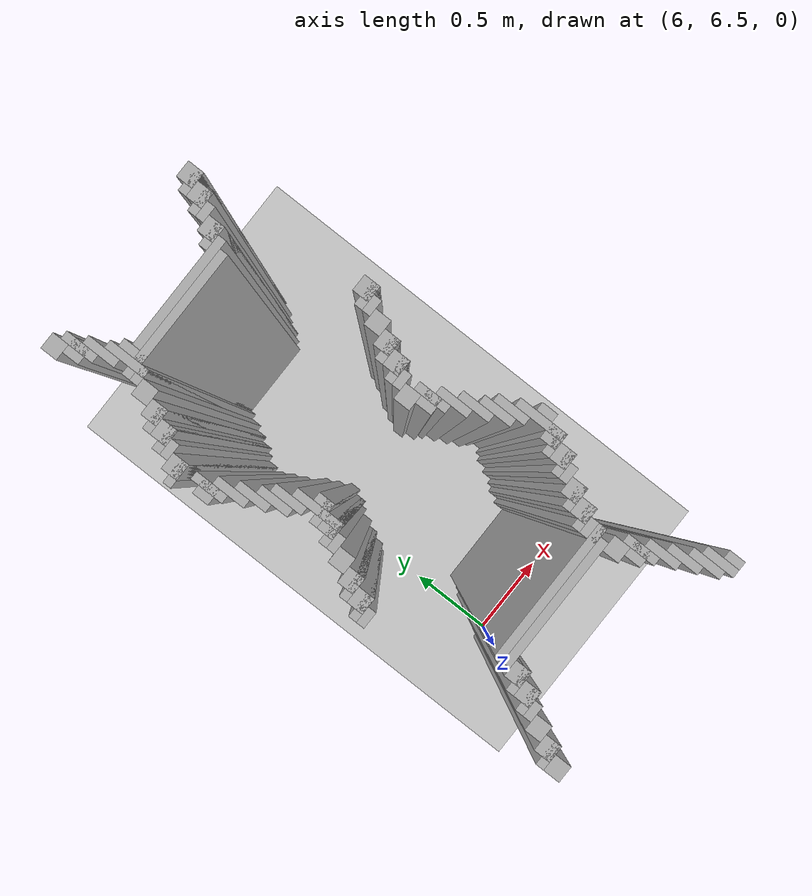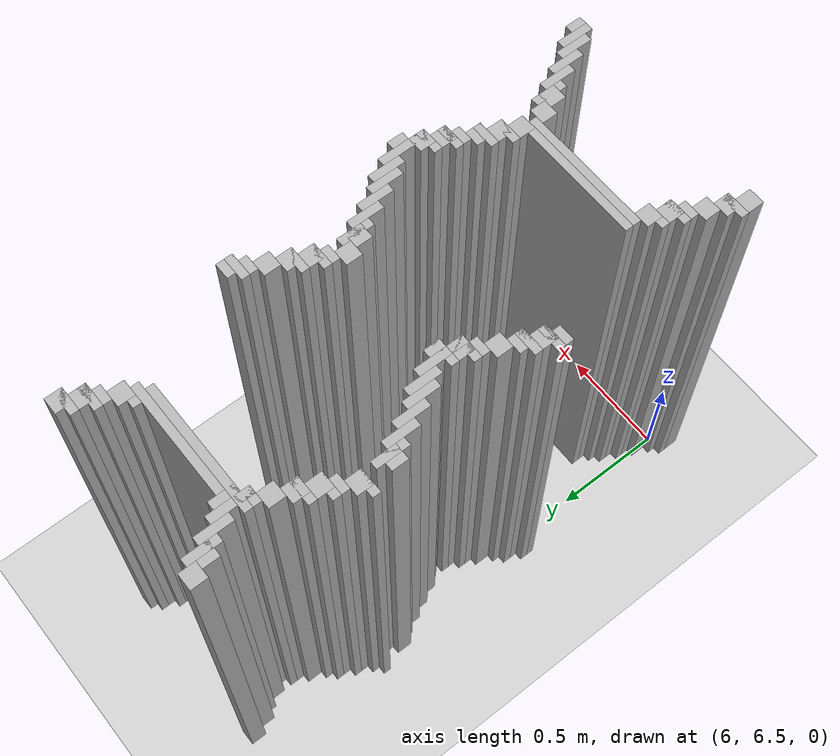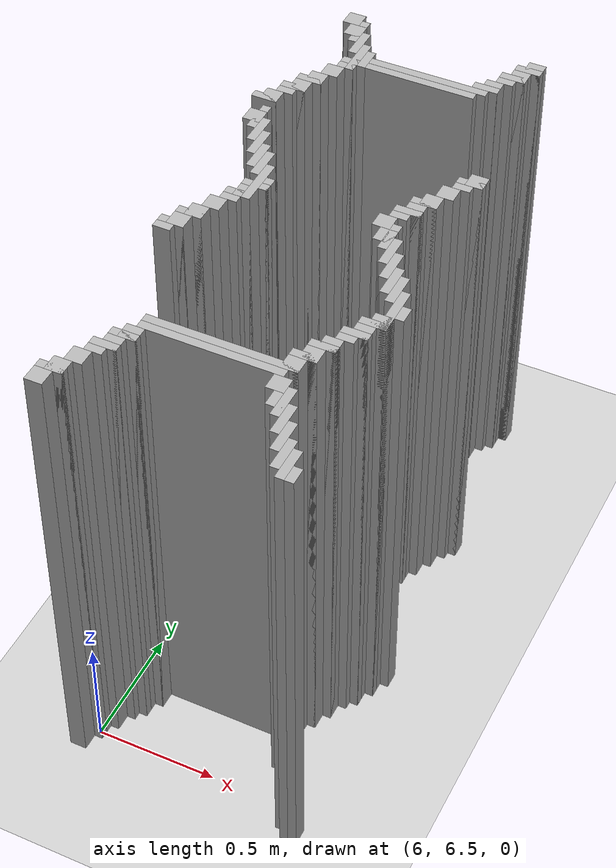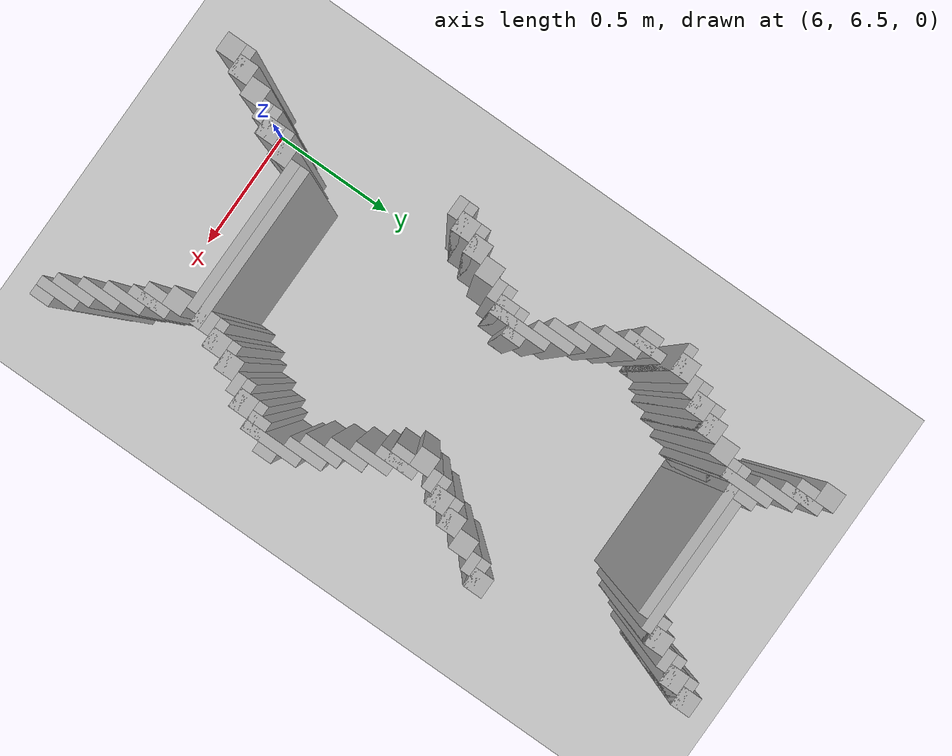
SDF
<sdf version="1.6">
 <world name="slam_world">
  <model name="ground_plane">
   <static>true</static>
   <link name="link">
    <collision name="collision">
     <geometry><plane><normal>0 0 1</normal><size>100 100</size></plane></geometry>
    </collision>
    <visual name="visual">
     <geometry><plane><normal>0 0 1</normal><size>100 100</size></plane></geometry>
     <material>
      <ambient>0.8 0.8 0.8 1</ambient>
      <diffuse>0.8 0.8 0.8 1</diffuse>
      <specular>0.8 0.8 0.8 1</specular>
     </material>
    </visual>
   </link>
  </model>
  <model name="wall_2879">
   <static>true</static>
   <pose>6.020881670533642 8.735498839907192 1.0 0 0 0</pose>
   <link name="link">
    <collision name="collision">
     <geometry><box><size>0.06960556844547564 0.06960556844547564 2.0</size></box></geometry>
    </collision>
    <visual name="visual">
     <geometry><box><size>0.06960556844547564 0.06960556844547564 2.0</size></box></geometry>
     <material><ambient>0.5 0.5 0.5 1</ambient><diffuse>0.7 0.7 0.7 1</diffuse></material>
    </visual>
   </link>
  </model>
  <model name="wall_2880">
   <static>true</static>
   <pose>6.786542923433874 8.735498839907192 1.0 0 0 0</pose>
   <link name="link">
    <collision name="collision">
     <geometry><box><size>0.06960556844547564 0.06960556844547564 2.0</size></box></geometry>
    </collision>
    <visual name="visual">
     <geometry><box><size>0.06960556844547564 0.06960556844547564 2.0</size></box></geometry>
     <material><ambient>0.5 0.5 0.5 1</ambient><diffuse>0.7 0.7 0.7 1</diffuse></material>
    </visual>
   </link>
  </model>
  <model name="wall_2894">
   <static>true</static>
   <pose>6.073085846867749 8.665893271461716 1.0 0 0 0</pose>
   <link name="link">
    <collision name="collision">
     <geometry><box><size>0.03480278422273782 0.13921113689095127 2.0</size></box></geometry>
    </collision>
    <visual name="visual">
     <geometry><box><size>0.03480278422273782 0.13921113689095127 2.0</size></box></geometry>
     <material><ambient>0.5 0.5 0.5 1</ambient><diffuse>0.7 0.7 0.7 1</diffuse></material>
    </visual>
   </link>
  </model>
  <model name="wall_2895">
   <static>true</static>
   <pose>6.769141531322505 8.718097447795824 1.0 0 0 0</pose>
   <link name="link">
    <collision name="collision">
     <geometry><box><size>0.10440835266821345 0.03480278422273782 2.0</size></box></geometry>
    </collision>
    <visual name="visual">
     <geometry><box><size>0.10440835266821345 0.03480278422273782 2.0</size></box></geometry>
     <material><ambient>0.5 0.5 0.5 1</ambient><diffuse>0.7 0.7 0.7 1</diffuse></material>
    </visual>
   </link>
  </model>
  <model name="wall_2908">
   <static>true</static>
   <pose>6.05568445475638 8.665893271461716 1.0 0 0 0</pose>
   <link name="link">
    <collision name="collision">
     <geometry><box><size>0.06960556844547564 0.06960556844547564 2.0</size></box></geometry>
    </collision>
    <visual name="visual">
     <geometry><box><size>0.06960556844547564 0.06960556844547564 2.0</size></box></geometry>
     <material><ambient>0.5 0.5 0.5 1</ambient><diffuse>0.7 0.7 0.7 1</diffuse></material>
    </visual>
   </link>
  </model>
  <model name="wall_2909">
   <static>true</static>
   <pose>6.751740139211137 8.665893271461716 1.0 0 0 0</pose>
   <link name="link">
    <collision name="collision">
     <geometry><box><size>0.06960556844547564 0.06960556844547564 2.0</size></box></geometry>
    </collision>
    <visual name="visual">
     <geometry><box><size>0.06960556844547564 0.06960556844547564 2.0</size></box></geometry>
     <material><ambient>0.5 0.5 0.5 1</ambient><diffuse>0.7 0.7 0.7 1</diffuse></material>
    </visual>
   </link>
  </model>
  <model name="wall_2920">
   <static>true</static>
   <pose>6.107888631090487 8.596287703016241 1.0 0 0 0</pose>
   <link name="link">
    <collision name="collision">
     <geometry><box><size>0.03480278422273782 0.13921113689095127 2.0</size></box></geometry>
    </collision>
    <visual name="visual">
     <geometry><box><size>0.03480278422273782 0.13921113689095127 2.0</size></box></geometry>
     <material><ambient>0.5 0.5 0.5 1</ambient><diffuse>0.7 0.7 0.7 1</diffuse></material>
    </visual>
   </link>
  </model>
  <model name="wall_2921">
   <static>true</static>
   <pose>6.734338747099768 8.648491879350347 1.0 0 0 0</pose>
   <link name="link">
    <collision name="collision">
     <geometry><box><size>0.10440835266821345 0.03480278422273782 2.0</size></box></geometry>
    </collision>
    <visual name="visual">
     <geometry><box><size>0.10440835266821345 0.03480278422273782 2.0</size></box></geometry>
     <material><ambient>0.5 0.5 0.5 1</ambient><diffuse>0.7 0.7 0.7 1</diffuse></material>
    </visual>
   </link>
  </model>
  <model name="wall_2931">
   <static>true</static>
   <pose>6.716937354988398 8.61368909512761 1.0 0 0 0</pose>
   <link name="link">
    <collision name="collision">
     <geometry><box><size>0.06960556844547564 0.03480278422273782 2.0</size></box></geometry>
    </collision>
    <visual name="visual">
     <geometry><box><size>0.06960556844547564 0.03480278422273782 2.0</size></box></geometry>
     <material><ambient>0.5 0.5 0.5 1</ambient><diffuse>0.7 0.7 0.7 1</diffuse></material>
    </visual>
   </link>
  </model>
  <model name="wall_2941">
   <static>true</static>
   <pose>6.142691415313225 8.509280742459396 1.0 0 0 0</pose>
   <link name="link">
    <collision name="collision">
     <geometry><box><size>0.03480278422273782 0.17401392111368907 2.0</size></box></geometry>
    </collision>
    <visual name="visual">
     <geometry><box><size>0.03480278422273782 0.17401392111368907 2.0</size></box></geometry>
     <material><ambient>0.5 0.5 0.5 1</ambient><diffuse>0.7 0.7 0.7 1</diffuse></material>
    </visual>
   </link>
  </model>
  <model name="wall_2942">
   <static>true</static>
   <pose>6.682134570765661 8.561484918793504 1.0 0 0 0</pose>
   <link name="link">
    <collision name="collision">
     <geometry><box><size>0.06960556844547564 0.06960556844547564 2.0</size></box></geometry>
    </collision>
    <visual name="visual">
     <geometry><box><size>0.06960556844547564 0.06960556844547564 2.0</size></box></geometry>
     <material><ambient>0.5 0.5 0.5 1</ambient><diffuse>0.7 0.7 0.7 1</diffuse></material>
    </visual>
   </link>
  </model>
  <model name="wall_2956">
   <static>true</static>
   <pose>6.177494199535962 8.509280742459396 1.0 0 0 0</pose>
   <link name="link">
    <collision name="collision">
     <geometry><box><size>0.03480278422273782 0.10440835266821345 2.0</size></box></geometry>
    </collision>
    <visual name="visual">
     <geometry><box><size>0.03480278422273782 0.10440835266821345 2.0</size></box></geometry>
     <material><ambient>0.5 0.5 0.5 1</ambient><diffuse>0.7 0.7 0.7 1</diffuse></material>
    </visual>
   </link>
  </model>
  <model name="wall_2957">
   <static>true</static>
   <pose>6.664733178654292 8.544083526682135 1.0 0 0 0</pose>
   <link name="link">
    <collision name="collision">
     <geometry><box><size>0.10440835266821345 0.03480278422273782 2.0</size></box></geometry>
    </collision>
    <visual name="visual">
     <geometry><box><size>0.10440835266821345 0.03480278422273782 2.0</size></box></geometry>
     <material><ambient>0.5 0.5 0.5 1</ambient><diffuse>0.7 0.7 0.7 1</diffuse></material>
    </visual>
   </link>
  </model>
  <model name="wall_2969">
   <static>true</static>
   <pose>6.438515081206496 8.509280742459396 1.0 0 0 0</pose>
   <link name="link">
    <collision name="collision">
     <geometry><box><size>0.4872389791183295 0.03480278422273782 2.0</size></box></geometry>
    </collision>
    <visual name="visual">
     <geometry><box><size>0.4872389791183295 0.03480278422273782 2.0</size></box></geometry>
     <material><ambient>0.5 0.5 0.5 1</ambient><diffuse>0.7 0.7 0.7 1</diffuse></material>
    </visual>
   </link>
  </model>
  <model name="wall_2979">
   <static>true</static>
   <pose>6.368909512761021 8.474477958236658 1.0 0 0 0</pose>
   <link name="link">
    <collision name="collision">
     <geometry><box><size>0.5568445475638051 0.03480278422273782 2.0</size></box></geometry>
    </collision>
    <visual name="visual">
     <geometry><box><size>0.5568445475638051 0.03480278422273782 2.0</size></box></geometry>
     <material><ambient>0.5 0.5 0.5 1</ambient><diffuse>0.7 0.7 0.7 1</diffuse></material>
    </visual>
   </link>
  </model>
  <model name="wall_2990">
   <static>true</static>
   <pose>6.125290023201856 8.43967517401392 1.0 0 0 0</pose>
   <link name="link">
    <collision name="collision">
     <geometry><box><size>0.06960556844547564 0.03480278422273782 2.0</size></box></geometry>
    </collision>
    <visual name="visual">
     <geometry><box><size>0.06960556844547564 0.03480278422273782 2.0</size></box></geometry>
     <material><ambient>0.5 0.5 0.5 1</ambient><diffuse>0.7 0.7 0.7 1</diffuse></material>
    </visual>
   </link>
  </model>
  <model name="wall_3003">
   <static>true</static>
   <pose>6.090487238979118 8.387470997679815 1.0 0 0 0</pose>
   <link name="link">
    <collision name="collision">
     <geometry><box><size>0.06960556844547564 0.06960556844547564 2.0</size></box></geometry>
    </collision>
    <visual name="visual">
     <geometry><box><size>0.06960556844547564 0.06960556844547564 2.0</size></box></geometry>
     <material><ambient>0.5 0.5 0.5 1</ambient><diffuse>0.7 0.7 0.7 1</diffuse></material>
    </visual>
   </link>
  </model>
  <model name="wall_3016">
   <static>true</static>
   <pose>6.05568445475638 8.317865429234338 1.0 0 0 0</pose>
   <link name="link">
    <collision name="collision">
     <geometry><box><size>0.06960556844547564 0.06960556844547564 2.0</size></box></geometry>
    </collision>
    <visual name="visual">
     <geometry><box><size>0.06960556844547564 0.06960556844547564 2.0</size></box></geometry>
     <material><ambient>0.5 0.5 0.5 1</ambient><diffuse>0.7 0.7 0.7 1</diffuse></material>
    </visual>
   </link>
  </model>
  <model name="wall_3029">
   <static>true</static>
   <pose>6.038283062645012 8.30046403712297 1.0 0 0 0</pose>
   <link name="link">
    <collision name="collision">
     <geometry><box><size>0.10440835266821345 0.03480278422273782 2.0</size></box></geometry>
    </collision>
    <visual name="visual">
     <geometry><box><size>0.10440835266821345 0.03480278422273782 2.0</size></box></geometry>
     <material><ambient>0.5 0.5 0.5 1</ambient><diffuse>0.7 0.7 0.7 1</diffuse></material>
    </visual>
   </link>
  </model>
  <model name="wall_3041">
   <static>true</static>
   <pose>6.020881670533642 8.248259860788863 1.0 0 0 0</pose>
   <link name="link">
    <collision name="collision">
     <geometry><box><size>0.06960556844547564 0.06960556844547564 2.0</size></box></geometry>
    </collision>
    <visual name="visual">
     <geometry><box><size>0.06960556844547564 0.06960556844547564 2.0</size></box></geometry>
     <material><ambient>0.5 0.5 0.5 1</ambient><diffuse>0.7 0.7 0.7 1</diffuse></material>
    </visual>
   </link>
  </model>
  <model name="wall_3053">
   <static>true</static>
   <pose>6.003480278422273 8.230858468677495 1.0 0 0 0</pose>
   <link name="link">
    <collision name="collision">
     <geometry><box><size>0.10440835266821345 0.03480278422273782 2.0</size></box></geometry>
    </collision>
    <visual name="visual">
     <geometry><box><size>0.10440835266821345 0.03480278422273782 2.0</size></box></geometry>
     <material><ambient>0.5 0.5 0.5 1</ambient><diffuse>0.7 0.7 0.7 1</diffuse></material>
    </visual>
   </link>
  </model>
  <model name="wall_3065">
   <static>true</static>
   <pose>5.986078886310905 8.196055684454755 1.0 0 0 0</pose>
   <link name="link">
    <collision name="collision">
     <geometry><box><size>0.06960556844547564 0.03480278422273782 2.0</size></box></geometry>
    </collision>
    <visual name="visual">
     <geometry><box><size>0.06960556844547564 0.03480278422273782 2.0</size></box></geometry>
     <material><ambient>0.5 0.5 0.5 1</ambient><diffuse>0.7 0.7 0.7 1</diffuse></material>
    </visual>
   </link>
  </model>
  <model name="wall_3075">
   <static>true</static>
   <pose>5.951276102088166 8.14385150812065 1.0 0 0 0</pose>
   <link name="link">
    <collision name="collision">
     <geometry><box><size>0.06960556844547564 0.06960556844547564 2.0</size></box></geometry>
    </collision>
    <visual name="visual">
     <geometry><box><size>0.06960556844547564 0.06960556844547564 2.0</size></box></geometry>
     <material><ambient>0.5 0.5 0.5 1</ambient><diffuse>0.7 0.7 0.7 1</diffuse></material>
    </visual>
   </link>
  </model>
  <model name="wall_3087">
   <static>true</static>
   <pose>5.933874709976798 8.12645011600928 1.0 0 0 0</pose>
   <link name="link">
    <collision name="collision">
     <geometry><box><size>0.10440835266821345 0.03480278422273782 2.0</size></box></geometry>
    </collision>
    <visual name="visual">
     <geometry><box><size>0.10440835266821345 0.03480278422273782 2.0</size></box></geometry>
     <material><ambient>0.5 0.5 0.5 1</ambient><diffuse>0.7 0.7 0.7 1</diffuse></material>
    </visual>
   </link>
  </model>
  <model name="wall_3109">
   <static>true</static>
   <pose>5.968677494199536 8.004640371229698 1.0 0 0 0</pose>
   <link name="link">
    <collision name="collision">
     <geometry><box><size>0.03480278422273782 0.13921113689095127 2.0</size></box></geometry>
    </collision>
    <visual name="visual">
     <geometry><box><size>0.03480278422273782 0.13921113689095127 2.0</size></box></geometry>
     <material><ambient>0.5 0.5 0.5 1</ambient><diffuse>0.7 0.7 0.7 1</diffuse></material>
    </visual>
   </link>
  </model>
  <model name="wall_3116">
   <static>true</static>
   <pose>5.951276102088166 8.004640371229698 1.0 0 0 0</pose>
   <link name="link">
    <collision name="collision">
     <geometry><box><size>0.06960556844547564 0.06960556844547564 2.0</size></box></geometry>
    </collision>
    <visual name="visual">
     <geometry><box><size>0.06960556844547564 0.06960556844547564 2.0</size></box></geometry>
     <material><ambient>0.5 0.5 0.5 1</ambient><diffuse>0.7 0.7 0.7 1</diffuse></material>
    </visual>
   </link>
  </model>
  <model name="wall_3117">
   <static>true</static>
   <pose>6.85614849187935 8.004640371229698 1.0 0 0 0</pose>
   <link name="link">
    <collision name="collision">
     <geometry><box><size>0.06960556844547564 0.06960556844547564 2.0</size></box></geometry>
    </collision>
    <visual name="visual">
     <geometry><box><size>0.06960556844547564 0.06960556844547564 2.0</size></box></geometry>
     <material><ambient>0.5 0.5 0.5 1</ambient><diffuse>0.7 0.7 0.7 1</diffuse></material>
    </visual>
   </link>
  </model>
  <model name="wall_3125">
   <static>true</static>
   <pose>6.003480278422273 7.935034802784222 1.0 0 0 0</pose>
   <link name="link">
    <collision name="collision">
     <geometry><box><size>0.03480278422273782 0.13921113689095127 2.0</size></box></geometry>
    </collision>
    <visual name="visual">
     <geometry><box><size>0.03480278422273782 0.13921113689095127 2.0</size></box></geometry>
     <material><ambient>0.5 0.5 0.5 1</ambient><diffuse>0.7 0.7 0.7 1</diffuse></material>
    </visual>
   </link>
  </model>
  <model name="wall_3126">
   <static>true</static>
   <pose>6.838747099767981 7.987238979118329 1.0 0 0 0</pose>
   <link name="link">
    <collision name="collision">
     <geometry><box><size>0.10440835266821345 0.03480278422273782 2.0</size></box></geometry>
    </collision>
    <visual name="visual">
     <geometry><box><size>0.10440835266821345 0.03480278422273782 2.0</size></box></geometry>
     <material><ambient>0.5 0.5 0.5 1</ambient><diffuse>0.7 0.7 0.7 1</diffuse></material>
    </visual>
   </link>
  </model>
  <model name="wall_3133">
   <static>true</static>
   <pose>6.821345707656612 7.952436194895592 1.0 0 0 0</pose>
   <link name="link">
    <collision name="collision">
     <geometry><box><size>0.06960556844547564 0.03480278422273782 2.0</size></box></geometry>
    </collision>
    <visual name="visual">
     <geometry><box><size>0.06960556844547564 0.03480278422273782 2.0</size></box></geometry>
     <material><ambient>0.5 0.5 0.5 1</ambient><diffuse>0.7 0.7 0.7 1</diffuse></material>
    </visual>
   </link>
  </model>
  <model name="wall_3139">
   <static>true</static>
   <pose>6.038283062645012 7.865429234338746 1.0 0 0 0</pose>
   <link name="link">
    <collision name="collision">
     <geometry><box><size>0.03480278422273782 0.13921113689095127 2.0</size></box></geometry>
    </collision>
    <visual name="visual">
     <geometry><box><size>0.03480278422273782 0.13921113689095127 2.0</size></box></geometry>
     <material><ambient>0.5 0.5 0.5 1</ambient><diffuse>0.7 0.7 0.7 1</diffuse></material>
    </visual>
   </link>
  </model>
  <model name="wall_3140">
   <static>true</static>
   <pose>6.786542923433874 7.900232018561485 1.0 0 0 0</pose>
   <link name="link">
    <collision name="collision">
     <geometry><box><size>0.06960556844547564 0.06960556844547564 2.0</size></box></geometry>
    </collision>
    <visual name="visual">
     <geometry><box><size>0.06960556844547564 0.06960556844547564 2.0</size></box></geometry>
     <material><ambient>0.5 0.5 0.5 1</ambient><diffuse>0.7 0.7 0.7 1</diffuse></material>
    </visual>
   </link>
  </model>
  <model name="wall_3148">
   <static>true</static>
   <pose>6.073085846867749 7.795823665893272 1.0 0 0 0</pose>
   <link name="link">
    <collision name="collision">
     <geometry><box><size>0.03480278422273782 0.13921113689095127 2.0</size></box></geometry>
    </collision>
    <visual name="visual">
     <geometry><box><size>0.03480278422273782 0.13921113689095127 2.0</size></box></geometry>
     <material><ambient>0.5 0.5 0.5 1</ambient><diffuse>0.7 0.7 0.7 1</diffuse></material>
    </visual>
   </link>
  </model>
  <model name="wall_3149">
   <static>true</static>
   <pose>6.751740139211137 7.830626450116009 1.0 0 0 0</pose>
   <link name="link">
    <collision name="collision">
     <geometry><box><size>0.06960556844547564 0.06960556844547564 2.0</size></box></geometry>
    </collision>
    <visual name="visual">
     <geometry><box><size>0.06960556844547564 0.06960556844547564 2.0</size></box></geometry>
     <material><ambient>0.5 0.5 0.5 1</ambient><diffuse>0.7 0.7 0.7 1</diffuse></material>
    </visual>
   </link>
  </model>
  <model name="wall_3157">
   <static>true</static>
   <pose>6.107888631090487 7.761020881670533 1.0 0 0 0</pose>
   <link name="link">
    <collision name="collision">
     <geometry><box><size>0.03480278422273782 0.13921113689095127 2.0</size></box></geometry>
    </collision>
    <visual name="visual">
     <geometry><box><size>0.03480278422273782 0.13921113689095127 2.0</size></box></geometry>
     <material><ambient>0.5 0.5 0.5 1</ambient><diffuse>0.7 0.7 0.7 1</diffuse></material>
    </visual>
   </link>
  </model>
  <model name="wall_3158">
   <static>true</static>
   <pose>6.734338747099768 7.81322505800464 1.0 0 0 0</pose>
   <link name="link">
    <collision name="collision">
     <geometry><box><size>0.10440835266821345 0.03480278422273782 2.0</size></box></geometry>
    </collision>
    <visual name="visual">
     <geometry><box><size>0.10440835266821345 0.03480278422273782 2.0</size></box></geometry>
     <material><ambient>0.5 0.5 0.5 1</ambient><diffuse>0.7 0.7 0.7 1</diffuse></material>
    </visual>
   </link>
  </model>
  <model name="wall_3165">
   <static>true</static>
   <pose>6.716937354988398 7.761020881670533 1.0 0 0 0</pose>
   <link name="link">
    <collision name="collision">
     <geometry><box><size>0.06960556844547564 0.06960556844547564 2.0</size></box></geometry>
    </collision>
    <visual name="visual">
     <geometry><box><size>0.06960556844547564 0.06960556844547564 2.0</size></box></geometry>
     <material><ambient>0.5 0.5 0.5 1</ambient><diffuse>0.7 0.7 0.7 1</diffuse></material>
    </visual>
   </link>
  </model>
  <model name="wall_3169">
   <static>true</static>
   <pose>6.142691415313225 7.65661252900232 1.0 0 0 0</pose>
   <link name="link">
    <collision name="collision">
     <geometry><box><size>0.03480278422273782 0.2088167053364269 2.0</size></box></geometry>
    </collision>
    <visual name="visual">
     <geometry><box><size>0.03480278422273782 0.2088167053364269 2.0</size></box></geometry>
     <material><ambient>0.5 0.5 0.5 1</ambient><diffuse>0.7 0.7 0.7 1</diffuse></material>
    </visual>
   </link>
  </model>
  <model name="wall_3170">
   <static>true</static>
   <pose>6.69953596287703 7.743619489559165 1.0 0 0 0</pose>
   <link name="link">
    <collision name="collision">
     <geometry><box><size>0.10440835266821345 0.03480278422273782 2.0</size></box></geometry>
    </collision>
    <visual name="visual">
     <geometry><box><size>0.10440835266821345 0.03480278422273782 2.0</size></box></geometry>
     <material><ambient>0.5 0.5 0.5 1</ambient><diffuse>0.7 0.7 0.7 1</diffuse></material>
    </visual>
   </link>
  </model>
  <model name="wall_3177">
   <static>true</static>
   <pose>6.682134570765661 7.708816705336426 1.0 0 0 0</pose>
   <link name="link">
    <collision name="collision">
     <geometry><box><size>0.06960556844547564 0.03480278422273782 2.0</size></box></geometry>
    </collision>
    <visual name="visual">
     <geometry><box><size>0.06960556844547564 0.03480278422273782 2.0</size></box></geometry>
     <material><ambient>0.5 0.5 0.5 1</ambient><diffuse>0.7 0.7 0.7 1</diffuse></material>
    </visual>
   </link>
  </model>
  <model name="wall_3183">
   <static>true</static>
   <pose>6.177494199535962 7.65661252900232 1.0 0 0 0</pose>
   <link name="link">
    <collision name="collision">
     <geometry><box><size>0.03480278422273782 0.06960556844547564 2.0</size></box></geometry>
    </collision>
    <visual name="visual">
     <geometry><box><size>0.03480278422273782 0.06960556844547564 2.0</size></box></geometry>
     <material><ambient>0.5 0.5 0.5 1</ambient><diffuse>0.7 0.7 0.7 1</diffuse></material>
    </visual>
   </link>
  </model>
  <model name="wall_3184">
   <static>true</static>
   <pose>6.647331786542924 7.65661252900232 1.0 0 0 0</pose>
   <link name="link">
    <collision name="collision">
     <geometry><box><size>0.06960556844547564 0.06960556844547564 2.0</size></box></geometry>
    </collision>
    <visual name="visual">
     <geometry><box><size>0.06960556844547564 0.06960556844547564 2.0</size></box></geometry>
     <material><ambient>0.5 0.5 0.5 1</ambient><diffuse>0.7 0.7 0.7 1</diffuse></material>
    </visual>
   </link>
  </model>
  <model name="wall_3197">
   <static>true</static>
   <pose>6.142691415313225 7.6392111368909505 1.0 0 0 0</pose>
   <link name="link">
    <collision name="collision">
     <geometry><box><size>0.10440835266821345 0.03480278422273782 2.0</size></box></geometry>
    </collision>
    <visual name="visual">
     <geometry><box><size>0.10440835266821345 0.03480278422273782 2.0</size></box></geometry>
     <material><ambient>0.5 0.5 0.5 1</ambient><diffuse>0.7 0.7 0.7 1</diffuse></material>
    </visual>
   </link>
  </model>
  <model name="wall_3198">
   <static>true</static>
   <pose>6.69953596287703 7.587006960556844 1.0 0 0 0</pose>
   <link name="link">
    <collision name="collision">
     <geometry><box><size>0.03480278422273782 0.13921113689095127 2.0</size></box></geometry>
    </collision>
    <visual name="visual">
     <geometry><box><size>0.03480278422273782 0.13921113689095127 2.0</size></box></geometry>
     <material><ambient>0.5 0.5 0.5 1</ambient><diffuse>0.7 0.7 0.7 1</diffuse></material>
    </visual>
   </link>
  </model>
  <model name="wall_3210">
   <static>true</static>
   <pose>6.125290023201856 7.587006960556844 1.0 0 0 0</pose>
   <link name="link">
    <collision name="collision">
     <geometry><box><size>0.06960556844547564 0.06960556844547564 2.0</size></box></geometry>
    </collision>
    <visual name="visual">
     <geometry><box><size>0.06960556844547564 0.06960556844547564 2.0</size></box></geometry>
     <material><ambient>0.5 0.5 0.5 1</ambient><diffuse>0.7 0.7 0.7 1</diffuse></material>
    </visual>
   </link>
  </model>
  <model name="wall_3211">
   <static>true</static>
   <pose>6.682134570765661 7.587006960556844 1.0 0 0 0</pose>
   <link name="link">
    <collision name="collision">
     <geometry><box><size>0.06960556844547564 0.06960556844547564 2.0</size></box></geometry>
    </collision>
    <visual name="visual">
     <geometry><box><size>0.06960556844547564 0.06960556844547564 2.0</size></box></geometry>
     <material><ambient>0.5 0.5 0.5 1</ambient><diffuse>0.7 0.7 0.7 1</diffuse></material>
    </visual>
   </link>
  </model>
  <model name="wall_3223">
   <static>true</static>
   <pose>6.107888631090487 7.569605568445476 1.0 0 0 0</pose>
   <link name="link">
    <collision name="collision">
     <geometry><box><size>0.10440835266821345 0.03480278422273782 2.0</size></box></geometry>
    </collision>
    <visual name="visual">
     <geometry><box><size>0.10440835266821345 0.03480278422273782 2.0</size></box></geometry>
     <material><ambient>0.5 0.5 0.5 1</ambient><diffuse>0.7 0.7 0.7 1</diffuse></material>
    </visual>
   </link>
  </model>
  <model name="wall_3224">
   <static>true</static>
   <pose>6.734338747099768 7.517401392111369 1.0 0 0 0</pose>
   <link name="link">
    <collision name="collision">
     <geometry><box><size>0.03480278422273782 0.13921113689095127 2.0</size></box></geometry>
    </collision>
    <visual name="visual">
     <geometry><box><size>0.03480278422273782 0.13921113689095127 2.0</size></box></geometry>
     <material><ambient>0.5 0.5 0.5 1</ambient><diffuse>0.7 0.7 0.7 1</diffuse></material>
    </visual>
   </link>
  </model>
  <model name="wall_3235">
   <static>true</static>
   <pose>6.090487238979118 7.534802784222737 1.0 0 0 0</pose>
   <link name="link">
    <collision name="collision">
     <geometry><box><size>0.06960556844547564 0.03480278422273782 2.0</size></box></geometry>
    </collision>
    <visual name="visual">
     <geometry><box><size>0.06960556844547564 0.03480278422273782 2.0</size></box></geometry>
     <material><ambient>0.5 0.5 0.5 1</ambient><diffuse>0.7 0.7 0.7 1</diffuse></material>
    </visual>
   </link>
  </model>
  <model name="wall_3245">
   <static>true</static>
   <pose>6.05568445475638 7.48259860788863 1.0 0 0 0</pose>
   <link name="link">
    <collision name="collision">
     <geometry><box><size>0.06960556844547564 0.06960556844547564 2.0</size></box></geometry>
    </collision>
    <visual name="visual">
     <geometry><box><size>0.06960556844547564 0.06960556844547564 2.0</size></box></geometry>
     <material><ambient>0.5 0.5 0.5 1</ambient><diffuse>0.7 0.7 0.7 1</diffuse></material>
    </visual>
   </link>
  </model>
  <model name="wall_3246">
   <static>true</static>
   <pose>6.769141531322505 7.447795823665893 1.0 0 0 0</pose>
   <link name="link">
    <collision name="collision">
     <geometry><box><size>0.03480278422273782 0.13921113689095127 2.0</size></box></geometry>
    </collision>
    <visual name="visual">
     <geometry><box><size>0.03480278422273782 0.13921113689095127 2.0</size></box></geometry>
     <material><ambient>0.5 0.5 0.5 1</ambient><diffuse>0.7 0.7 0.7 1</diffuse></material>
    </visual>
   </link>
  </model>
  <model name="wall_3258">
   <static>true</static>
   <pose>6.020881670533642 7.412993039443156 1.0 0 0 0</pose>
   <link name="link">
    <collision name="collision">
     <geometry><box><size>0.06960556844547564 0.06960556844547564 2.0</size></box></geometry>
    </collision>
    <visual name="visual">
     <geometry><box><size>0.06960556844547564 0.06960556844547564 2.0</size></box></geometry>
     <material><ambient>0.5 0.5 0.5 1</ambient><diffuse>0.7 0.7 0.7 1</diffuse></material>
    </visual>
   </link>
  </model>
  <model name="wall_3259">
   <static>true</static>
   <pose>6.803944315545244 7.378190255220417 1.0 0 0 0</pose>
   <link name="link">
    <collision name="collision">
     <geometry><box><size>0.03480278422273782 0.13921113689095127 2.0</size></box></geometry>
    </collision>
    <visual name="visual">
     <geometry><box><size>0.03480278422273782 0.13921113689095127 2.0</size></box></geometry>
     <material><ambient>0.5 0.5 0.5 1</ambient><diffuse>0.7 0.7 0.7 1</diffuse></material>
    </visual>
   </link>
  </model>
  <model name="wall_3271">
   <static>true</static>
   <pose>6.003480278422273 7.395591647331786 1.0 0 0 0</pose>
   <link name="link">
    <collision name="collision">
     <geometry><box><size>0.10440835266821345 0.03480278422273782 2.0</size></box></geometry>
    </collision>
    <visual name="visual">
     <geometry><box><size>0.10440835266821345 0.03480278422273782 2.0</size></box></geometry>
     <material><ambient>0.5 0.5 0.5 1</ambient><diffuse>0.7 0.7 0.7 1</diffuse></material>
    </visual>
   </link>
  </model>
  <model name="wall_3272">
   <static>true</static>
   <pose>6.838747099767981 7.34338747099768 1.0 0 0 0</pose>
   <link name="link">
    <collision name="collision">
     <geometry><box><size>0.03480278422273782 0.13921113689095127 2.0</size></box></geometry>
    </collision>
    <visual name="visual">
     <geometry><box><size>0.03480278422273782 0.13921113689095127 2.0</size></box></geometry>
     <material><ambient>0.5 0.5 0.5 1</ambient><diffuse>0.7 0.7 0.7 1</diffuse></material>
    </visual>
   </link>
  </model>
  <model name="wall_3281">
   <static>true</static>
   <pose>5.986078886310905 7.34338747099768 1.0 0 0 0</pose>
   <link name="link">
    <collision name="collision">
     <geometry><box><size>0.06960556844547564 0.06960556844547564 2.0</size></box></geometry>
    </collision>
    <visual name="visual">
     <geometry><box><size>0.06960556844547564 0.06960556844547564 2.0</size></box></geometry>
     <material><ambient>0.5 0.5 0.5 1</ambient><diffuse>0.7 0.7 0.7 1</diffuse></material>
    </visual>
   </link>
  </model>
  <model name="wall_3291">
   <static>true</static>
   <pose>5.968677494199536 7.32598607888631 1.0 0 0 0</pose>
   <link name="link">
    <collision name="collision">
     <geometry><box><size>0.10440835266821345 0.03480278422273782 2.0</size></box></geometry>
    </collision>
    <visual name="visual">
     <geometry><box><size>0.10440835266821345 0.03480278422273782 2.0</size></box></geometry>
     <material><ambient>0.5 0.5 0.5 1</ambient><diffuse>0.7 0.7 0.7 1</diffuse></material>
    </visual>
   </link>
  </model>
  <model name="wall_3292">
   <static>true</static>
   <pose>6.8735498839907185 7.238979118329466 1.0 0 0 0</pose>
   <link name="link">
    <collision name="collision">
     <geometry><box><size>0.03480278422273782 0.2088167053364269 2.0</size></box></geometry>
    </collision>
    <visual name="visual">
     <geometry><box><size>0.03480278422273782 0.2088167053364269 2.0</size></box></geometry>
     <material><ambient>0.5 0.5 0.5 1</ambient><diffuse>0.7 0.7 0.7 1</diffuse></material>
    </visual>
   </link>
  </model>
  <model name="wall_3301">
   <static>true</static>
   <pose>5.951276102088166 7.291183294663573 1.0 0 0 0</pose>
   <link name="link">
    <collision name="collision">
     <geometry><box><size>0.06960556844547564 0.03480278422273782 2.0</size></box></geometry>
    </collision>
    <visual name="visual">
     <geometry><box><size>0.06960556844547564 0.03480278422273782 2.0</size></box></geometry>
     <material><ambient>0.5 0.5 0.5 1</ambient><diffuse>0.7 0.7 0.7 1</diffuse></material>
    </visual>
   </link>
  </model>
  <model name="wall_3311">
   <static>true</static>
   <pose>6.908352668213457 7.238979118329466 1.0 0 0 0</pose>
   <link name="link">
    <collision name="collision">
     <geometry><box><size>0.03480278422273782 0.06960556844547564 2.0</size></box></geometry>
    </collision>
    <visual name="visual">
     <geometry><box><size>0.03480278422273782 0.06960556844547564 2.0</size></box></geometry>
     <material><ambient>0.5 0.5 0.5 1</ambient><diffuse>0.7 0.7 0.7 1</diffuse></material>
    </visual>
   </link>
  </model>
  <model name="wall_3322">
   <static>true</static>
   <pose>6.85614849187935 7.16937354988399 1.0 0 0 0</pose>
   <link name="link">
    <collision name="collision">
     <geometry><box><size>0.06960556844547564 0.06960556844547564 2.0</size></box></geometry>
    </collision>
    <visual name="visual">
     <geometry><box><size>0.06960556844547564 0.06960556844547564 2.0</size></box></geometry>
     <material><ambient>0.5 0.5 0.5 1</ambient><diffuse>0.7 0.7 0.7 1</diffuse></material>
    </visual>
   </link>
  </model>
  <model name="wall_3334">
   <static>true</static>
   <pose>6.838747099767981 7.151972157772621 1.0 0 0 0</pose>
   <link name="link">
    <collision name="collision">
     <geometry><box><size>0.10440835266821345 0.03480278422273782 2.0</size></box></geometry>
    </collision>
    <visual name="visual">
     <geometry><box><size>0.10440835266821345 0.03480278422273782 2.0</size></box></geometry>
     <material><ambient>0.5 0.5 0.5 1</ambient><diffuse>0.7 0.7 0.7 1</diffuse></material>
    </visual>
   </link>
  </model>
  <model name="wall_3346">
   <static>true</static>
   <pose>6.821345707656612 7.099767981438514 1.0 0 0 0</pose>
   <link name="link">
    <collision name="collision">
     <geometry><box><size>0.06960556844547564 0.06960556844547564 2.0</size></box></geometry>
    </collision>
    <visual name="visual">
     <geometry><box><size>0.06960556844547564 0.06960556844547564 2.0</size></box></geometry>
     <material><ambient>0.5 0.5 0.5 1</ambient><diffuse>0.7 0.7 0.7 1</diffuse></material>
    </visual>
   </link>
  </model>
  <model name="wall_3358">
   <static>true</static>
   <pose>6.803944315545244 7.082366589327146 1.0 0 0 0</pose>
   <link name="link">
    <collision name="collision">
     <geometry><box><size>0.10440835266821345 0.03480278422273782 2.0</size></box></geometry>
    </collision>
    <visual name="visual">
     <geometry><box><size>0.10440835266821345 0.03480278422273782 2.0</size></box></geometry>
     <material><ambient>0.5 0.5 0.5 1</ambient><diffuse>0.7 0.7 0.7 1</diffuse></material>
    </visual>
   </link>
  </model>
  <model name="wall_3367">
   <static>true</static>
   <pose>6.786542923433874 7.047563805104408 1.0 0 0 0</pose>
   <link name="link">
    <collision name="collision">
     <geometry><box><size>0.06960556844547564 0.03480278422273782 2.0</size></box></geometry>
    </collision>
    <visual name="visual">
     <geometry><box><size>0.06960556844547564 0.03480278422273782 2.0</size></box></geometry>
     <material><ambient>0.5 0.5 0.5 1</ambient><diffuse>0.7 0.7 0.7 1</diffuse></material>
    </visual>
   </link>
  </model>
  <model name="wall_3375">
   <static>true</static>
   <pose>6.751740139211137 6.995359628770301 1.0 0 0 0</pose>
   <link name="link">
    <collision name="collision">
     <geometry><box><size>0.06960556844547564 0.06960556844547564 2.0</size></box></geometry>
    </collision>
    <visual name="visual">
     <geometry><box><size>0.06960556844547564 0.06960556844547564 2.0</size></box></geometry>
     <material><ambient>0.5 0.5 0.5 1</ambient><diffuse>0.7 0.7 0.7 1</diffuse></material>
    </visual>
   </link>
  </model>
  <model name="wall_3384">
   <static>true</static>
   <pose>6.734338747099768 6.977958236658933 1.0 0 0 0</pose>
   <link name="link">
    <collision name="collision">
     <geometry><box><size>0.10440835266821345 0.03480278422273782 2.0</size></box></geometry>
    </collision>
    <visual name="visual">
     <geometry><box><size>0.10440835266821345 0.03480278422273782 2.0</size></box></geometry>
     <material><ambient>0.5 0.5 0.5 1</ambient><diffuse>0.7 0.7 0.7 1</diffuse></material>
    </visual>
   </link>
  </model>
  <model name="wall_3392">
   <static>true</static>
   <pose>6.716937354988398 6.9257540603248255 1.0 0 0 0</pose>
   <link name="link">
    <collision name="collision">
     <geometry><box><size>0.06960556844547564 0.06960556844547564 2.0</size></box></geometry>
    </collision>
    <visual name="visual">
     <geometry><box><size>0.06960556844547564 0.06960556844547564 2.0</size></box></geometry>
     <material><ambient>0.5 0.5 0.5 1</ambient><diffuse>0.7 0.7 0.7 1</diffuse></material>
    </visual>
   </link>
  </model>
  <model name="wall_3404">
   <static>true</static>
   <pose>6.69953596287703 6.908352668213457 1.0 0 0 0</pose>
   <link name="link">
    <collision name="collision">
     <geometry><box><size>0.10440835266821345 0.03480278422273782 2.0</size></box></geometry>
    </collision>
    <visual name="visual">
     <geometry><box><size>0.10440835266821345 0.03480278422273782 2.0</size></box></geometry>
     <material><ambient>0.5 0.5 0.5 1</ambient><diffuse>0.7 0.7 0.7 1</diffuse></material>
    </visual>
   </link>
  </model>
  <model name="wall_3413">
   <static>true</static>
   <pose>6.682134570765661 6.85614849187935 1.0 0 0 0</pose>
   <link name="link">
    <collision name="collision">
     <geometry><box><size>0.06960556844547564 0.06960556844547564 2.0</size></box></geometry>
    </collision>
    <visual name="visual">
     <geometry><box><size>0.06960556844547564 0.06960556844547564 2.0</size></box></geometry>
     <material><ambient>0.5 0.5 0.5 1</ambient><diffuse>0.7 0.7 0.7 1</diffuse></material>
    </visual>
   </link>
  </model>
  <model name="wall_3422">
   <static>true</static>
   <pose>6.421113689095128 6.838747099767981 1.0 0 0 0</pose>
   <link name="link">
    <collision name="collision">
     <geometry><box><size>0.5916473317865429 0.03480278422273782 2.0</size></box></geometry>
    </collision>
    <visual name="visual">
     <geometry><box><size>0.5916473317865429 0.03480278422273782 2.0</size></box></geometry>
     <material><ambient>0.5 0.5 0.5 1</ambient><diffuse>0.7 0.7 0.7 1</diffuse></material>
    </visual>
   </link>
  </model>
  <model name="wall_3432">
   <static>true</static>
   <pose>6.403712296983758 6.803944315545244 1.0 0 0 0</pose>
   <link name="link">
    <collision name="collision">
     <geometry><box><size>0.5568445475638051 0.03480278422273782 2.0</size></box></geometry>
    </collision>
    <visual name="visual">
     <geometry><box><size>0.5568445475638051 0.03480278422273782 2.0</size></box></geometry>
     <material><ambient>0.5 0.5 0.5 1</ambient><diffuse>0.7 0.7 0.7 1</diffuse></material>
    </visual>
   </link>
  </model>
  <model name="wall_3444">
   <static>true</static>
   <pose>6.125290023201856 6.751740139211137 1.0 0 0 0</pose>
   <link name="link">
    <collision name="collision">
     <geometry><box><size>0.06960556844547564 0.06960556844547564 2.0</size></box></geometry>
    </collision>
    <visual name="visual">
     <geometry><box><size>0.06960556844547564 0.06960556844547564 2.0</size></box></geometry>
     <material><ambient>0.5 0.5 0.5 1</ambient><diffuse>0.7 0.7 0.7 1</diffuse></material>
    </visual>
   </link>
  </model>
  <model name="wall_3445">
   <static>true</static>
   <pose>6.682134570765661 6.751740139211137 1.0 0 0 0</pose>
   <link name="link">
    <collision name="collision">
     <geometry><box><size>0.06960556844547564 0.06960556844547564 2.0</size></box></geometry>
    </collision>
    <visual name="visual">
     <geometry><box><size>0.06960556844547564 0.06960556844547564 2.0</size></box></geometry>
     <material><ambient>0.5 0.5 0.5 1</ambient><diffuse>0.7 0.7 0.7 1</diffuse></material>
    </visual>
   </link>
  </model>
  <model name="wall_3464">
   <static>true</static>
   <pose>6.107888631090487 6.734338747099768 1.0 0 0 0</pose>
   <link name="link">
    <collision name="collision">
     <geometry><box><size>0.10440835266821345 0.03480278422273782 2.0</size></box></geometry>
    </collision>
    <visual name="visual">
     <geometry><box><size>0.10440835266821345 0.03480278422273782 2.0</size></box></geometry>
     <material><ambient>0.5 0.5 0.5 1</ambient><diffuse>0.7 0.7 0.7 1</diffuse></material>
    </visual>
   </link>
  </model>
  <model name="wall_3465">
   <static>true</static>
   <pose>6.734338747099768 6.682134570765661 1.0 0 0 0</pose>
   <link name="link">
    <collision name="collision">
     <geometry><box><size>0.03480278422273782 0.13921113689095127 2.0</size></box></geometry>
    </collision>
    <visual name="visual">
     <geometry><box><size>0.03480278422273782 0.13921113689095127 2.0</size></box></geometry>
     <material><ambient>0.5 0.5 0.5 1</ambient><diffuse>0.7 0.7 0.7 1</diffuse></material>
    </visual>
   </link>
  </model>
  <model name="wall_3484">
   <static>true</static>
   <pose>6.090487238979118 6.682134570765661 1.0 0 0 0</pose>
   <link name="link">
    <collision name="collision">
     <geometry><box><size>0.06960556844547564 0.06960556844547564 2.0</size></box></geometry>
    </collision>
    <visual name="visual">
     <geometry><box><size>0.06960556844547564 0.06960556844547564 2.0</size></box></geometry>
     <material><ambient>0.5 0.5 0.5 1</ambient><diffuse>0.7 0.7 0.7 1</diffuse></material>
    </visual>
   </link>
  </model>
  <model name="wall_3485">
   <static>true</static>
   <pose>6.716937354988398 6.682134570765661 1.0 0 0 0</pose>
   <link name="link">
    <collision name="collision">
     <geometry><box><size>0.06960556844547564 0.06960556844547564 2.0</size></box></geometry>
    </collision>
    <visual name="visual">
     <geometry><box><size>0.06960556844547564 0.06960556844547564 2.0</size></box></geometry>
     <material><ambient>0.5 0.5 0.5 1</ambient><diffuse>0.7 0.7 0.7 1</diffuse></material>
    </visual>
   </link>
  </model>
  <model name="wall_3504">
   <static>true</static>
   <pose>6.073085846867749 6.664733178654292 1.0 0 0 0</pose>
   <link name="link">
    <collision name="collision">
     <geometry><box><size>0.10440835266821345 0.03480278422273782 2.0</size></box></geometry>
    </collision>
    <visual name="visual">
     <geometry><box><size>0.10440835266821345 0.03480278422273782 2.0</size></box></geometry>
     <material><ambient>0.5 0.5 0.5 1</ambient><diffuse>0.7 0.7 0.7 1</diffuse></material>
    </visual>
   </link>
  </model>
  <model name="wall_3505">
   <static>true</static>
   <pose>6.769141531322505 6.612529002320185 1.0 0 0 0</pose>
   <link name="link">
    <collision name="collision">
     <geometry><box><size>0.03480278422273782 0.13921113689095127 2.0</size></box></geometry>
    </collision>
    <visual name="visual">
     <geometry><box><size>0.03480278422273782 0.13921113689095127 2.0</size></box></geometry>
     <material><ambient>0.5 0.5 0.5 1</ambient><diffuse>0.7 0.7 0.7 1</diffuse></material>
    </visual>
   </link>
  </model>
  <model name="wall_3520">
   <static>true</static>
   <pose>6.05568445475638 6.629930394431554 1.0 0 0 0</pose>
   <link name="link">
    <collision name="collision">
     <geometry><box><size>0.06960556844547564 0.03480278422273782 2.0</size></box></geometry>
    </collision>
    <visual name="visual">
     <geometry><box><size>0.06960556844547564 0.03480278422273782 2.0</size></box></geometry>
     <material><ambient>0.5 0.5 0.5 1</ambient><diffuse>0.7 0.7 0.7 1</diffuse></material>
    </visual>
   </link>
  </model>
  <model name="wall_3534">
   <static>true</static>
   <pose>6.020881670533642 6.577726218097448 1.0 0 0 0</pose>
   <link name="link">
    <collision name="collision">
     <geometry><box><size>0.06960556844547564 0.06960556844547564 2.0</size></box></geometry>
    </collision>
    <visual name="visual">
     <geometry><box><size>0.06960556844547564 0.06960556844547564 2.0</size></box></geometry>
     <material><ambient>0.5 0.5 0.5 1</ambient><diffuse>0.7 0.7 0.7 1</diffuse></material>
    </visual>
   </link>
  </model>
  <model name="wall_3535">
   <static>true</static>
   <pose>6.803944315545244 6.5429234338747095 1.0 0 0 0</pose>
   <link name="link">
    <collision name="collision">
     <geometry><box><size>0.03480278422273782 0.13921113689095127 2.0</size></box></geometry>
    </collision>
    <visual name="visual">
     <geometry><box><size>0.03480278422273782 0.13921113689095127 2.0</size></box></geometry>
     <material><ambient>0.5 0.5 0.5 1</ambient><diffuse>0.7 0.7 0.7 1</diffuse></material>
    </visual>
   </link>
  </model>
  <model name="wall_3554">
   <static>true</static>
   <pose>5.986078886310905 6.508120649651972 1.0 0 0 0</pose>
   <link name="link">
    <collision name="collision">
     <geometry><box><size>0.06960556844547564 0.06960556844547564 2.0</size></box></geometry>
    </collision>
    <visual name="visual">
     <geometry><box><size>0.06960556844547564 0.06960556844547564 2.0</size></box></geometry>
     <material><ambient>0.5 0.5 0.5 1</ambient><diffuse>0.7 0.7 0.7 1</diffuse></material>
    </visual>
   </link>
  </model>
  <model name="wall_3555">
   <static>true</static>
   <pose>6.838747099767981 6.473317865429234 1.0 0 0 0</pose>
   <link name="link">
    <collision name="collision">
     <geometry><box><size>0.03480278422273782 0.13921113689095127 2.0</size></box></geometry>
    </collision>
    <visual name="visual">
     <geometry><box><size>0.03480278422273782 0.13921113689095127 2.0</size></box></geometry>
     <material><ambient>0.5 0.5 0.5 1</ambient><diffuse>0.7 0.7 0.7 1</diffuse></material>
    </visual>
   </link>
  </model>
  <model name="wall_3574">
   <static>true</static>
   <pose>5.968677494199536 6.490719257540603 1.0 0 0 0</pose>
   <link name="link">
    <collision name="collision">
     <geometry><box><size>0.10440835266821345 0.03480278422273782 2.0</size></box></geometry>
    </collision>
    <visual name="visual">
     <geometry><box><size>0.10440835266821345 0.03480278422273782 2.0</size></box></geometry>
     <material><ambient>0.5 0.5 0.5 1</ambient><diffuse>0.7 0.7 0.7 1</diffuse></material>
    </visual>
   </link>
  </model>
  <model name="wall_3575">
   <static>true</static>
   <pose>6.8735498839907185 6.438515081206496 1.0 0 0 0</pose>
   <link name="link">
    <collision name="collision">
     <geometry><box><size>0.03480278422273782 0.13921113689095127 2.0</size></box></geometry>
    </collision>
    <visual name="visual">
     <geometry><box><size>0.03480278422273782 0.13921113689095127 2.0</size></box></geometry>
     <material><ambient>0.5 0.5 0.5 1</ambient><diffuse>0.7 0.7 0.7 1</diffuse></material>
    </visual>
   </link>
  </model>
  <model name="wall_3590">
   <static>true</static>
   <pose>5.951276102088166 6.438515081206496 1.0 0 0 0</pose>
   <link name="link">
    <collision name="collision">
     <geometry><box><size>0.06960556844547564 0.06960556844547564 2.0</size></box></geometry>
    </collision>
    <visual name="visual">
     <geometry><box><size>0.06960556844547564 0.06960556844547564 2.0</size></box></geometry>
     <material><ambient>0.5 0.5 0.5 1</ambient><diffuse>0.7 0.7 0.7 1</diffuse></material>
    </visual>
   </link>
  </model>
  <model name="wall_3602">
   <static>true</static>
   <pose>6.908352668213457 6.403712296983758 1.0 0 0 0</pose>
   <link name="link">
    <collision name="collision">
     <geometry><box><size>0.03480278422273782 0.06960556844547564 2.0</size></box></geometry>
    </collision>
    <visual name="visual">
     <geometry><box><size>0.03480278422273782 0.06960556844547564 2.0</size></box></geometry>
     <material><ambient>0.5 0.5 0.5 1</ambient><diffuse>0.7 0.7 0.7 1</diffuse></material>
    </visual>
   </link>
  </model>
 </world>
</sdf>
